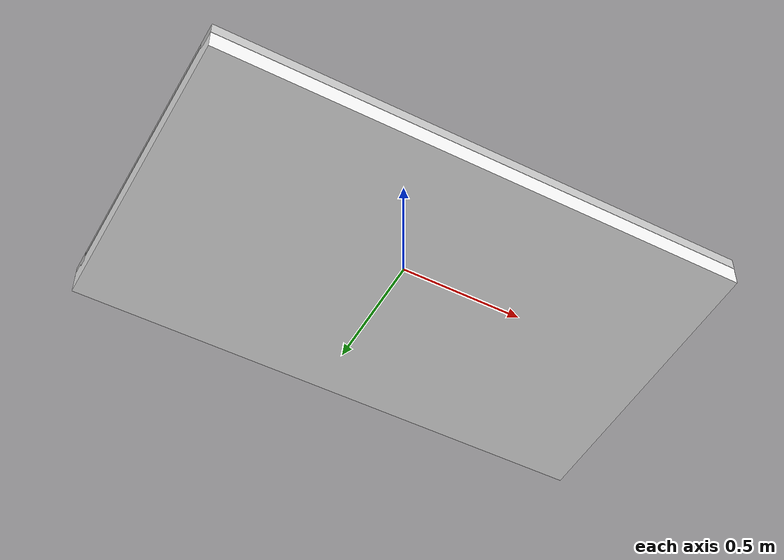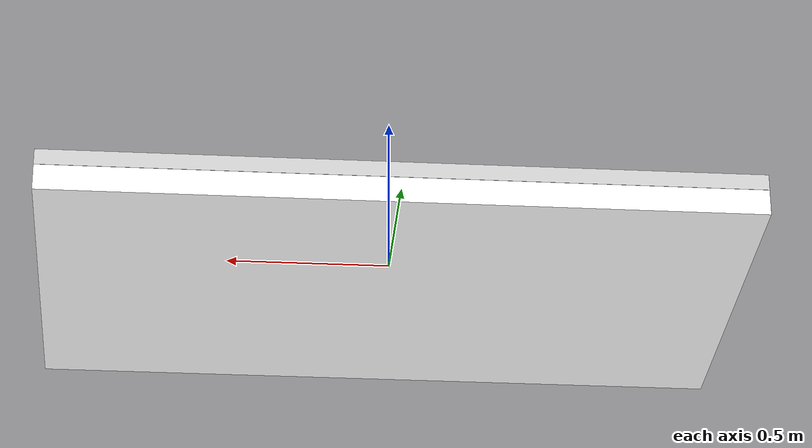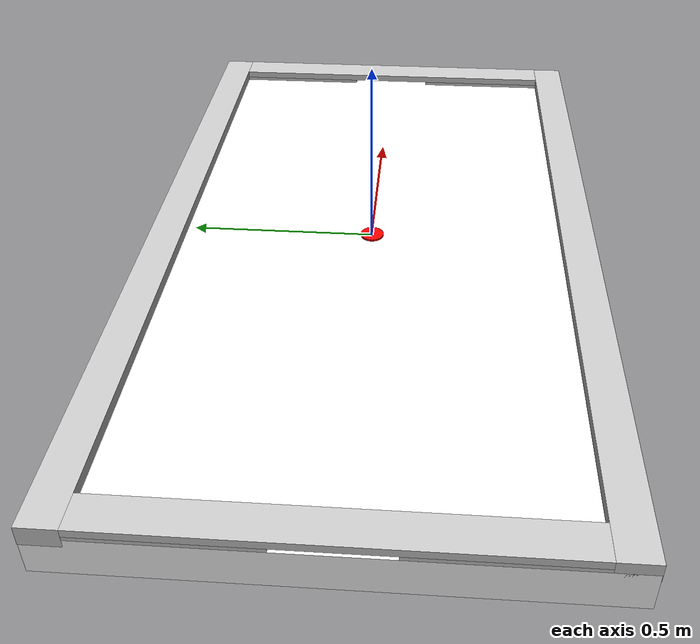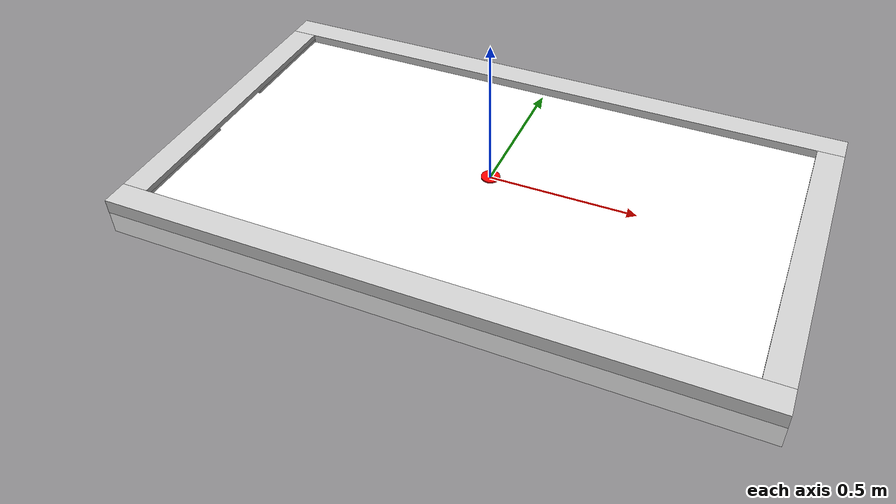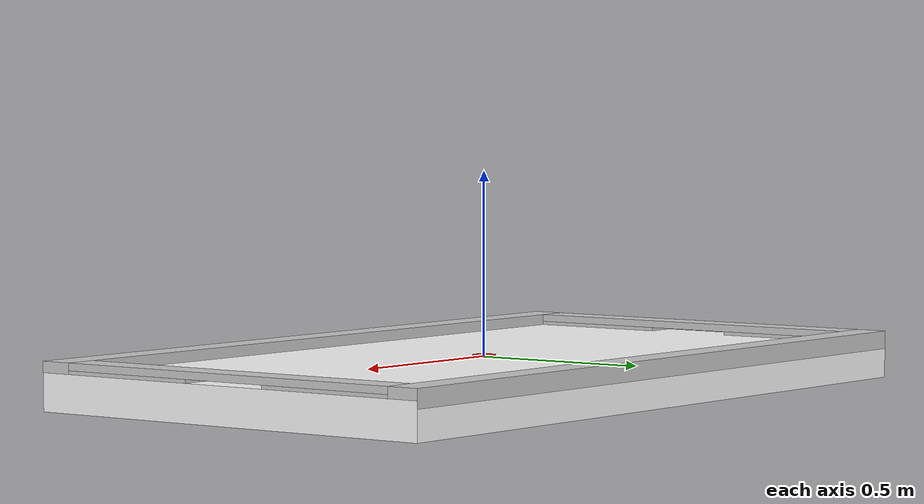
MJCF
<mujoco model="table">

    <option cone="elliptic">
        <flag multiccd="enable"/>
    </option>

    <asset>
        <material name="grey" specular="0.5" shininess="0.25" rgba="0.8 0.8 0.8 1"/>
        <material name="white" specular="0.5" shininess="0.25" rgba="1.0 1.0 1.0 1"/>
        <material name="red" specular="0.5" shininess="0.25" rgba="1.0 0.0 0.0 1"/>
    </asset>

    <default>
        <geom condim="4" solref="0.02 0.3"/>
        <default class="rim">
            <geom type="box" material="grey" friction="0.12931021481683416 0.0 0.0"/>
        </default>
    </default>

    <worldbody>
        <body name="puck" pos="0 0 0">
            <freejoint name="puck"/>
            <geom pos="0 0 0.00245" name="puck" type="cylinder" material="red" size="0.03165 0.00245" friction="0.0 0.002104678089464182 0"/>
            <inertial pos="0 0 0" mass="0.01" diaginertia="0.01 0.01 5e-6"/>
        </body>

        <body name="table">
            <geom name="surface" type="box" material="white" size="1.0695 0.61 0.0505" pos="0 0 -0.0505" friction="0.0002959345937628299 0.0 0.0"/>

            <geom name="rim_home_l" class="rim" size="0.045 0.198 0.005" pos="-1.0245 0.323 0.005"/>
            <geom name="rim_home_r" class="rim" size="0.045 0.198 0.005" pos="-1.0245 -0.323 0.005"/>
            <geom name="rim_home_top" class="rim" size="0.045 0.521 0.01" pos="-1.0245 0 0.02"/>

            <geom name="rim_left" class="rim" size="1.0695 0.045 0.025" pos="0 0.566 0.005"/>
            <geom name="rim_right" class="rim" size="1.0695 0.045 0.025" pos="0 -0.566 0.005"/>

            <geom name="rim_away_l" class="rim" size="0.045 0.198 0.005" pos="1.0245 0.323 0.005"/>
            <geom name="rim_away_r" class="rim" size="0.045 0.198 0.005" pos="1.0245 -0.323 0.005"/>
            <geom name="rim_away_top" class="rim" size="0.045 0.521 0.01" pos="1.0245 0 0.02"/>
        </body>
    </worldbody>
</mujoco>
